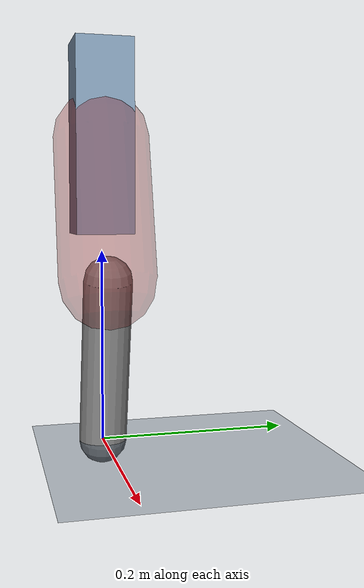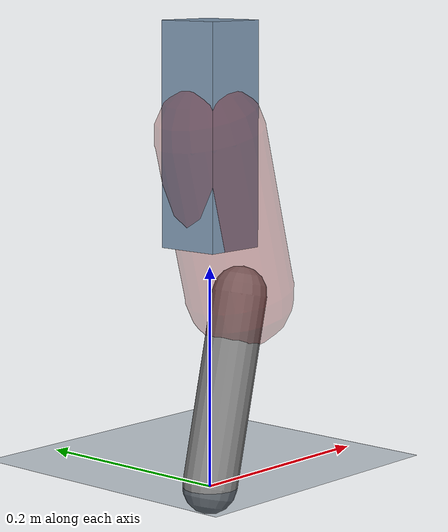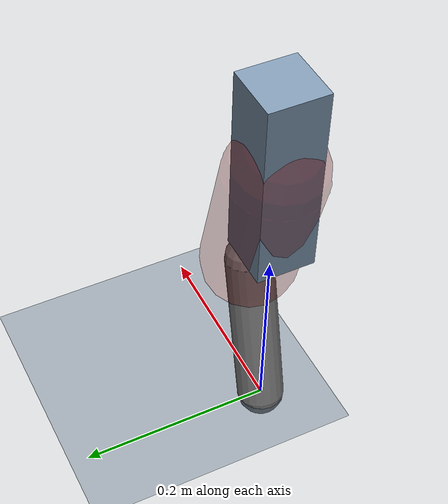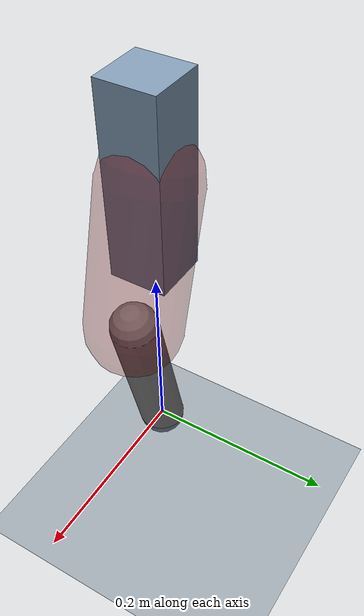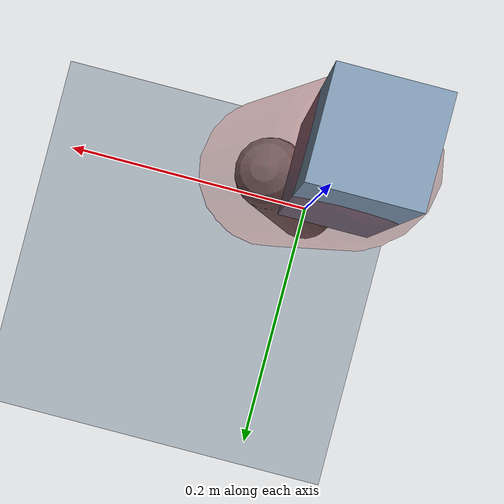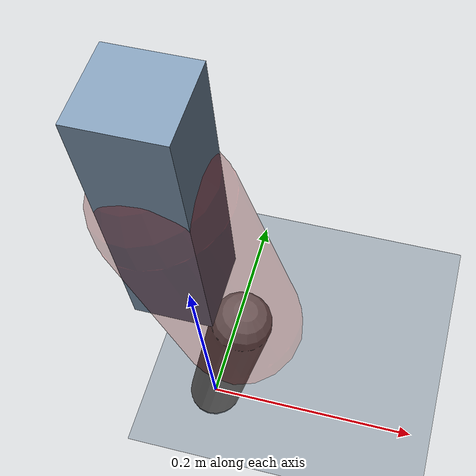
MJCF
<mujoco model="Hopper2D">
	<compiler inertiafromgeom="true" angle="radian" />
	<option timestep="0.001" integrator="implicit" cone="elliptic" solver="Newton" tolerance="1e-10" />

	<default>
		<geom contype="1" conaffinity="1" condim="3" friction="2 0.005 0.0001" solref="0.005 1" />
		<joint limited="true" damping="0.1" />
	</default>

	<asset>
		<texture name="skybox" type="skybox" builtin="gradient" rgb1=".4 .6 .8" rgb2="0 0 0" width="800" height="800" />
		<texture name="grid" type="2d" builtin="checker" rgb1=".1 .2 .3" rgb2=".2 .3 .4" width="300" height="300" mark="edge" markrgb=".2 .3 .4" />
		<material name="ground" texture="grid" texrepeat="1 1" texuniform="true" reflectance="0.1" />
		<material name="leg" rgba="0.5 0.6 0.7 1" />
	</asset>

	<worldbody>

		<geom name="floor" type="plane" size="5 5 0.25" material="ground" />

		<light directional="false" diffuse="0.8 0.8 0.8" specular="0.3 0.3 0.3" pos="0 0 2" dir="0 0 -1" />
		<light mode="targetbodycom" target="base" directional="false" diffuse="0.8 0.8 0.8" specular="0.3 0.3 0.3" pos="0 0 2" dir="0 0 -1" />

		<camera name="fixed" pos="0 -2 1" xyaxes="1 0 0 0 0 1" />
		<camera name="tracking" mode="trackcom" pos="0 -3 1" />

		<body name="root" pos="0 0 0.3182339868413512">
			<joint name="slide_x" type="slide" axis="1 0 0" range="-100 100" />
			<joint name="slide_z" type="slide" axis="0 0 1" range="0 10" />

			<body name="base" pos="0 0 0">
				<geom name="torso" type="box" size="0.03 0.03 0.1" mass="2.828" material="leg" />

				<body name="link1" pos="0 0 0" euler="0 1.3035456945985238 0">
					<joint type="hinge" axis="0 -1 0" pos="0 0 0" name="hinge1" limited="true" range="-3.14 3.14" stiffness="0" damping="0.1" />
					<geom name="thigh" type="capsule" fromto="0 0 0 0.15177358858646303 0 0" size="0.05" rgba="0.5 0 0 0.3" mass="0.612679253748865" />

					<body name="link2" pos="0.15177358858646303 0 0" euler="0 0.4963862159393043 0">
						<joint type="hinge" axis="0 -1 0" pos="0 0 0" name="hinge2" limited="true" range="-3.14 3.14" stiffness="0" damping="0.1" />
						<geom name="shank" type="capsule" fromto="0 0 0 0.17646039825488818 0 0" size="0.025" mass="0.38086831860391057" />

					</body>
				</body>
			</body>
		</body>
	</worldbody>

	<actuator>
		<motor name="torque1" joint="hinge1" ctrlrange="-38.24995497585127 38.24995497585127" ctrllimited="true" gear="1" />
		<motor name="torque2" joint="hinge2" ctrlrange="-98.28842181907251 98.28842181907251" ctrllimited="true" gear="1" />
	</actuator>
</mujoco>
